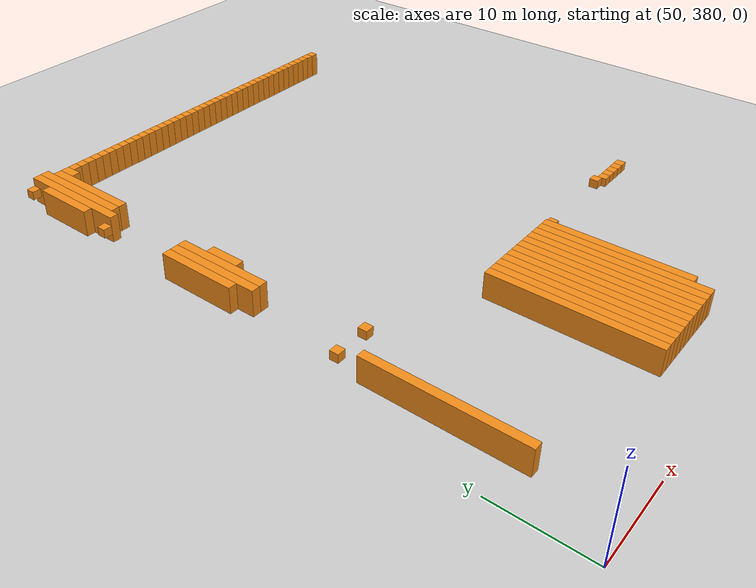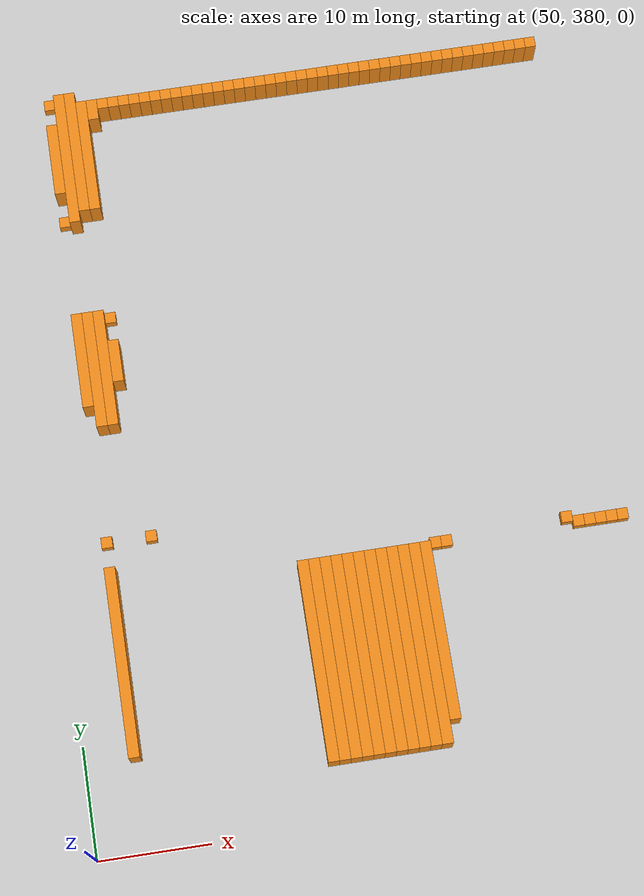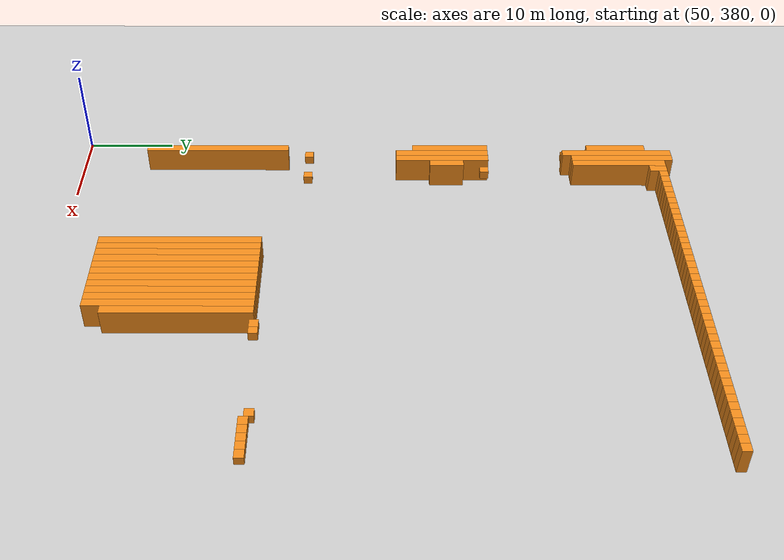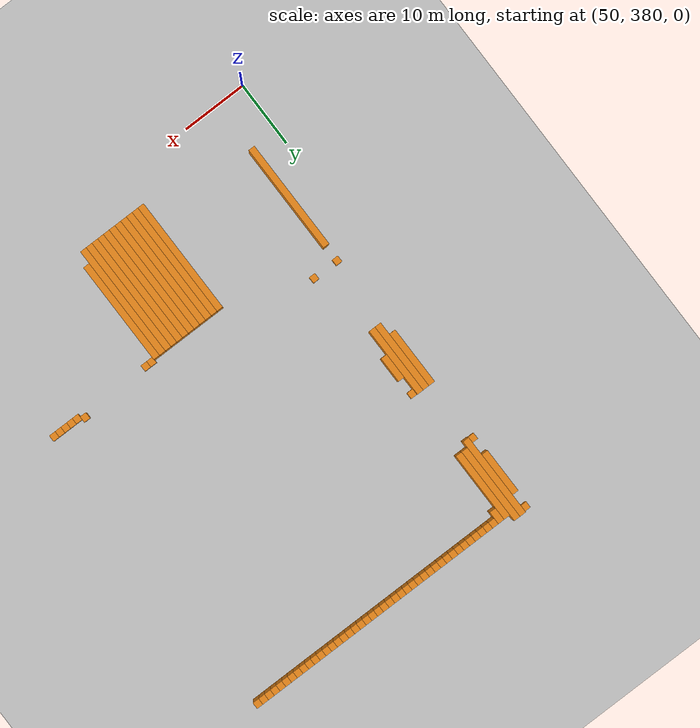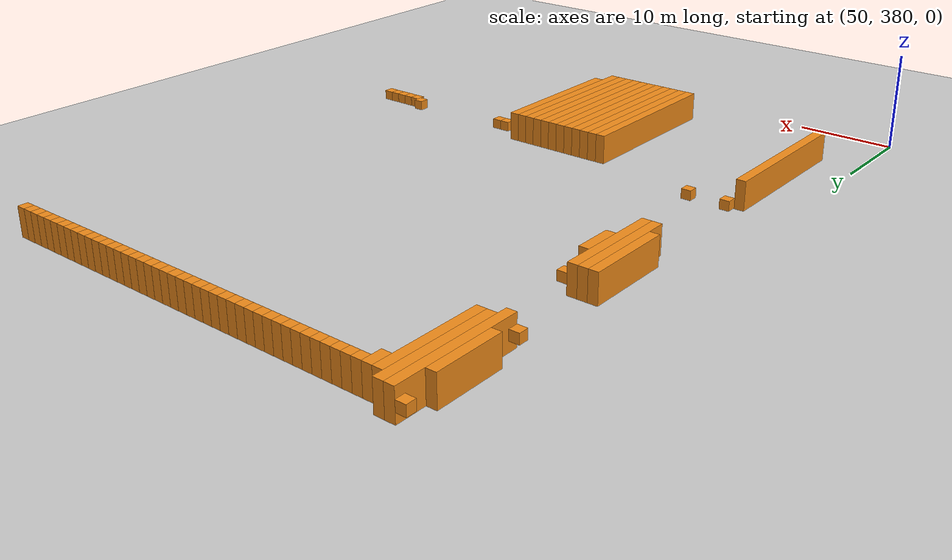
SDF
<sdf version="1.6">
 <world name="default">
  <include><uri>model://ground_plane</uri></include>
  <model name="unit_box_649">
   <pose>54.50   396.50     1.50 0 0 0</pose>
   <static>1</static>
   <link name="link">
    <inertial>
     <mass>5000</mass>
     <inertia><ixx>200</ixx><ixy>0</ixy><ixz>0</ixz><iyy>200</iyy><iyz>0</iyz><izz>200</izz></inertia>
    </inertial>
    <collision name="collision"><geometry><box><size>1 17 3</size></box></geometry></collision>
    <visual name="visual">
     <geometry><box><size>1 17 3</size></box></geometry>
     <material>
      <script><name>Gazebo/Orange</name><uri>file://media/materials/scripts/gazebo.material</uri></script>
     </material>
    </visual>
   </link>
  </model>
  <model name="unit_box_650">
   <pose>54.50   407.50     1.50 0 0 0</pose>
   <static>1</static>
   <link name="link">
    <inertial>
     <mass>5000</mass>
     <inertia><ixx>200</ixx><ixy>0</ixy><ixz>0</ixz><iyy>200</iyy><iyz>0</iyz><izz>200</izz></inertia>
    </inertial>
    <collision name="collision"><geometry><box><size>1 1 1</size></box></geometry></collision>
    <visual name="visual">
     <geometry><box><size>1 1 1</size></box></geometry>
     <material>
      <script><name>Gazebo/Orange</name><uri>file://media/materials/scripts/gazebo.material</uri></script>
     </material>
    </visual>
   </link>
  </model>
  <model name="unit_box_651">
   <pose>54.50   424.50     1.50 0 0 0</pose>
   <static>1</static>
   <link name="link">
    <inertial>
     <mass>5000</mass>
     <inertia><ixx>200</ixx><ixy>0</ixy><ixz>0</ixz><iyy>200</iyy><iyz>0</iyz><izz>200</izz></inertia>
    </inertial>
    <collision name="collision"><geometry><box><size>1 9 3</size></box></geometry></collision>
    <visual name="visual">
     <geometry><box><size>1 9 3</size></box></geometry>
     <material>
      <script><name>Gazebo/Orange</name><uri>file://media/materials/scripts/gazebo.material</uri></script>
     </material>
    </visual>
   </link>
  </model>
  <model name="unit_box_652">
   <pose>54.50   438.50     1.50 0 0 0</pose>
   <static>1</static>
   <link name="link">
    <inertial>
     <mass>5000</mass>
     <inertia><ixx>200</ixx><ixy>0</ixy><ixz>0</ixz><iyy>200</iyy><iyz>0</iyz><izz>200</izz></inertia>
    </inertial>
    <collision name="collision"><geometry><box><size>1 1 1</size></box></geometry></collision>
    <visual name="visual">
     <geometry><box><size>1 1 1</size></box></geometry>
     <material>
      <script><name>Gazebo/Orange</name><uri>file://media/materials/scripts/gazebo.material</uri></script>
     </material>
    </visual>
   </link>
  </model>
  <model name="unit_box_653">
   <pose>54.50   444.50     1.50 0 0 0</pose>
   <static>1</static>
   <link name="link">
    <inertial>
     <mass>5000</mass>
     <inertia><ixx>200</ixx><ixy>0</ixy><ixz>0</ixz><iyy>200</iyy><iyz>0</iyz><izz>200</izz></inertia>
    </inertial>
    <collision name="collision"><geometry><box><size>1 7 3</size></box></geometry></collision>
    <visual name="visual">
     <geometry><box><size>1 7 3</size></box></geometry>
     <material>
      <script><name>Gazebo/Orange</name><uri>file://media/materials/scripts/gazebo.material</uri></script>
     </material>
    </visual>
   </link>
  </model>
  <model name="unit_box_654">
   <pose>54.50   450.50     1.50 0 0 0</pose>
   <static>1</static>
   <link name="link">
    <inertial>
     <mass>5000</mass>
     <inertia><ixx>200</ixx><ixy>0</ixy><ixz>0</ixz><iyy>200</iyy><iyz>0</iyz><izz>200</izz></inertia>
    </inertial>
    <collision name="collision"><geometry><box><size>1 1 1</size></box></geometry></collision>
    <visual name="visual">
     <geometry><box><size>1 1 1</size></box></geometry>
     <material>
      <script><name>Gazebo/Orange</name><uri>file://media/materials/scripts/gazebo.material</uri></script>
     </material>
    </visual>
   </link>
  </model>
  <model name="unit_box_661">
   <pose>55.50   423.50     1.50 0 0 0</pose>
   <static>1</static>
   <link name="link">
    <inertial>
     <mass>5000</mass>
     <inertia><ixx>200</ixx><ixy>0</ixy><ixz>0</ixz><iyy>200</iyy><iyz>0</iyz><izz>200</izz></inertia>
    </inertial>
    <collision name="collision"><geometry><box><size>1 11 3</size></box></geometry></collision>
    <visual name="visual">
     <geometry><box><size>1 11 3</size></box></geometry>
     <material>
      <script><name>Gazebo/Orange</name><uri>file://media/materials/scripts/gazebo.material</uri></script>
     </material>
    </visual>
   </link>
  </model>
  <model name="unit_box_662">
   <pose>55.50   444.50     1.50 0 0 0</pose>
   <static>1</static>
   <link name="link">
    <inertial>
     <mass>5000</mass>
     <inertia><ixx>200</ixx><ixy>0</ixy><ixz>0</ixz><iyy>200</iyy><iyz>0</iyz><izz>200</izz></inertia>
    </inertial>
    <collision name="collision"><geometry><box><size>1 13 3</size></box></geometry></collision>
    <visual name="visual">
     <geometry><box><size>1 13 3</size></box></geometry>
     <material>
      <script><name>Gazebo/Orange</name><uri>file://media/materials/scripts/gazebo.material</uri></script>
     </material>
    </visual>
   </link>
  </model>
  <model name="unit_box_668">
   <pose>56.50   423.50     1.50 0 0 0</pose>
   <static>1</static>
   <link name="link">
    <inertial>
     <mass>5000</mass>
     <inertia><ixx>200</ixx><ixy>0</ixy><ixz>0</ixz><iyy>200</iyy><iyz>0</iyz><izz>200</izz></inertia>
    </inertial>
    <collision name="collision"><geometry><box><size>1 11 3</size></box></geometry></collision>
    <visual name="visual">
     <geometry><box><size>1 11 3</size></box></geometry>
     <material>
      <script><name>Gazebo/Orange</name><uri>file://media/materials/scripts/gazebo.material</uri></script>
     </material>
    </visual>
   </link>
  </model>
  <model name="unit_box_669">
   <pose>56.50   445.00     1.50 0 0 0</pose>
   <static>1</static>
   <link name="link">
    <inertial>
     <mass>5000</mass>
     <inertia><ixx>200</ixx><ixy>0</ixy><ixz>0</ixz><iyy>200</iyy><iyz>0</iyz><izz>200</izz></inertia>
    </inertial>
    <collision name="collision"><geometry><box><size>1 12 3</size></box></geometry></collision>
    <visual name="visual">
     <geometry><box><size>1 12 3</size></box></geometry>
     <material>
      <script><name>Gazebo/Orange</name><uri>file://media/materials/scripts/gazebo.material</uri></script>
     </material>
    </visual>
   </link>
  </model>
  <model name="unit_box_675">
   <pose>57.50   424.00     1.50 0 0 0</pose>
   <static>1</static>
   <link name="link">
    <inertial>
     <mass>5000</mass>
     <inertia><ixx>200</ixx><ixy>0</ixy><ixz>0</ixz><iyy>200</iyy><iyz>0</iyz><izz>200</izz></inertia>
    </inertial>
    <collision name="collision"><geometry><box><size>1 4 3</size></box></geometry></collision>
    <visual name="visual">
     <geometry><box><size>1 4 3</size></box></geometry>
     <material>
      <script><name>Gazebo/Orange</name><uri>file://media/materials/scripts/gazebo.material</uri></script>
     </material>
    </visual>
   </link>
  </model>
  <model name="unit_box_676">
   <pose>57.50   428.50     1.50 0 0 0</pose>
   <static>1</static>
   <link name="link">
    <inertial>
     <mass>5000</mass>
     <inertia><ixx>200</ixx><ixy>0</ixy><ixz>0</ixz><iyy>200</iyy><iyz>0</iyz><izz>200</izz></inertia>
    </inertial>
    <collision name="collision"><geometry><box><size>1 1 1</size></box></geometry></collision>
    <visual name="visual">
     <geometry><box><size>1 1 1</size></box></geometry>
     <material>
      <script><name>Gazebo/Orange</name><uri>file://media/materials/scripts/gazebo.material</uri></script>
     </material>
    </visual>
   </link>
  </model>
  <model name="unit_box_677">
   <pose>57.50   444.50     1.50 0 0 0</pose>
   <static>1</static>
   <link name="link">
    <inertial>
     <mass>5000</mass>
     <inertia><ixx>200</ixx><ixy>0</ixy><ixz>0</ixz><iyy>200</iyy><iyz>0</iyz><izz>200</izz></inertia>
    </inertial>
    <collision name="collision"><geometry><box><size>1 11 3</size></box></geometry></collision>
    <visual name="visual">
     <geometry><box><size>1 11 3</size></box></geometry>
     <material>
      <script><name>Gazebo/Orange</name><uri>file://media/materials/scripts/gazebo.material</uri></script>
     </material>
    </visual>
   </link>
  </model>
  <model name="unit_box_684">
   <pose>58.50   407.50     1.50 0 0 0</pose>
   <static>1</static>
   <link name="link">
    <inertial>
     <mass>5000</mass>
     <inertia><ixx>200</ixx><ixy>0</ixy><ixz>0</ixz><iyy>200</iyy><iyz>0</iyz><izz>200</izz></inertia>
    </inertial>
    <collision name="collision"><geometry><box><size>1 1 1</size></box></geometry></collision>
    <visual name="visual">
     <geometry><box><size>1 1 1</size></box></geometry>
     <material>
      <script><name>Gazebo/Orange</name><uri>file://media/materials/scripts/gazebo.material</uri></script>
     </material>
    </visual>
   </link>
  </model>
  <model name="unit_box_685">
   <pose>58.50   449.00     1.50 0 0 0</pose>
   <static>1</static>
   <link name="link">
    <inertial>
     <mass>5000</mass>
     <inertia><ixx>200</ixx><ixy>0</ixy><ixz>0</ixz><iyy>200</iyy><iyz>0</iyz><izz>200</izz></inertia>
    </inertial>
    <collision name="collision"><geometry><box><size>1 2 3</size></box></geometry></collision>
    <visual name="visual">
     <geometry><box><size>1 2 3</size></box></geometry>
     <material>
      <script><name>Gazebo/Orange</name><uri>file://media/materials/scripts/gazebo.material</uri></script>
     </material>
    </visual>
   </link>
  </model>
  <model name="unit_box_690">
   <pose>59.50   449.50     1.50 0 0 0</pose>
   <static>1</static>
   <link name="link">
    <inertial>
     <mass>5000</mass>
     <inertia><ixx>200</ixx><ixy>0</ixy><ixz>0</ixz><iyy>200</iyy><iyz>0</iyz><izz>200</izz></inertia>
    </inertial>
    <collision name="collision"><geometry><box><size>1 1 3</size></box></geometry></collision>
    <visual name="visual">
     <geometry><box><size>1 1 3</size></box></geometry>
     <material>
      <script><name>Gazebo/Orange</name><uri>file://media/materials/scripts/gazebo.material</uri></script>
     </material>
    </visual>
   </link>
  </model>
  <model name="unit_box_695">
   <pose>60.50   449.50     1.50 0 0 0</pose>
   <static>1</static>
   <link name="link">
    <inertial>
     <mass>5000</mass>
     <inertia><ixx>200</ixx><ixy>0</ixy><ixz>0</ixz><iyy>200</iyy><iyz>0</iyz><izz>200</izz></inertia>
    </inertial>
    <collision name="collision"><geometry><box><size>1 1 3</size></box></geometry></collision>
    <visual name="visual">
     <geometry><box><size>1 1 3</size></box></geometry>
     <material>
      <script><name>Gazebo/Orange</name><uri>file://media/materials/scripts/gazebo.material</uri></script>
     </material>
    </visual>
   </link>
  </model>
  <model name="unit_box_700">
   <pose>61.50   449.50     1.50 0 0 0</pose>
   <static>1</static>
   <link name="link">
    <inertial>
     <mass>5000</mass>
     <inertia><ixx>200</ixx><ixy>0</ixy><ixz>0</ixz><iyy>200</iyy><iyz>0</iyz><izz>200</izz></inertia>
    </inertial>
    <collision name="collision"><geometry><box><size>1 1 3</size></box></geometry></collision>
    <visual name="visual">
     <geometry><box><size>1 1 3</size></box></geometry>
     <material>
      <script><name>Gazebo/Orange</name><uri>file://media/materials/scripts/gazebo.material</uri></script>
     </material>
    </visual>
   </link>
  </model>
  <model name="unit_box_705">
   <pose>62.50   449.50     1.50 0 0 0</pose>
   <static>1</static>
   <link name="link">
    <inertial>
     <mass>5000</mass>
     <inertia><ixx>200</ixx><ixy>0</ixy><ixz>0</ixz><iyy>200</iyy><iyz>0</iyz><izz>200</izz></inertia>
    </inertial>
    <collision name="collision"><geometry><box><size>1 1 3</size></box></geometry></collision>
    <visual name="visual">
     <geometry><box><size>1 1 3</size></box></geometry>
     <material>
      <script><name>Gazebo/Orange</name><uri>file://media/materials/scripts/gazebo.material</uri></script>
     </material>
    </visual>
   </link>
  </model>
  <model name="unit_box_710">
   <pose>63.50   449.50     1.50 0 0 0</pose>
   <static>1</static>
   <link name="link">
    <inertial>
     <mass>5000</mass>
     <inertia><ixx>200</ixx><ixy>0</ixy><ixz>0</ixz><iyy>200</iyy><iyz>0</iyz><izz>200</izz></inertia>
    </inertial>
    <collision name="collision"><geometry><box><size>1 1 3</size></box></geometry></collision>
    <visual name="visual">
     <geometry><box><size>1 1 3</size></box></geometry>
     <material>
      <script><name>Gazebo/Orange</name><uri>file://media/materials/scripts/gazebo.material</uri></script>
     </material>
    </visual>
   </link>
  </model>
  <model name="unit_box_715">
   <pose>64.50   449.50     1.50 0 0 0</pose>
   <static>1</static>
   <link name="link">
    <inertial>
     <mass>5000</mass>
     <inertia><ixx>200</ixx><ixy>0</ixy><ixz>0</ixz><iyy>200</iyy><iyz>0</iyz><izz>200</izz></inertia>
    </inertial>
    <collision name="collision"><geometry><box><size>1 1 3</size></box></geometry></collision>
    <visual name="visual">
     <geometry><box><size>1 1 3</size></box></geometry>
     <material>
      <script><name>Gazebo/Orange</name><uri>file://media/materials/scripts/gazebo.material</uri></script>
     </material>
    </visual>
   </link>
  </model>
  <model name="unit_box_721">
   <pose>65.50   449.50     1.50 0 0 0</pose>
   <static>1</static>
   <link name="link">
    <inertial>
     <mass>5000</mass>
     <inertia><ixx>200</ixx><ixy>0</ixy><ixz>0</ixz><iyy>200</iyy><iyz>0</iyz><izz>200</izz></inertia>
    </inertial>
    <collision name="collision"><geometry><box><size>1 1 3</size></box></geometry></collision>
    <visual name="visual">
     <geometry><box><size>1 1 3</size></box></geometry>
     <material>
      <script><name>Gazebo/Orange</name><uri>file://media/materials/scripts/gazebo.material</uri></script>
     </material>
    </visual>
   </link>
  </model>
  <model name="unit_box_727">
   <pose>66.50   449.50     1.50 0 0 0</pose>
   <static>1</static>
   <link name="link">
    <inertial>
     <mass>5000</mass>
     <inertia><ixx>200</ixx><ixy>0</ixy><ixz>0</ixz><iyy>200</iyy><iyz>0</iyz><izz>200</izz></inertia>
    </inertial>
    <collision name="collision"><geometry><box><size>1 1 3</size></box></geometry></collision>
    <visual name="visual">
     <geometry><box><size>1 1 3</size></box></geometry>
     <material>
      <script><name>Gazebo/Orange</name><uri>file://media/materials/scripts/gazebo.material</uri></script>
     </material>
    </visual>
   </link>
  </model>
  <model name="unit_box_733">
   <pose>67.50   449.50     1.50 0 0 0</pose>
   <static>1</static>
   <link name="link">
    <inertial>
     <mass>5000</mass>
     <inertia><ixx>200</ixx><ixy>0</ixy><ixz>0</ixz><iyy>200</iyy><iyz>0</iyz><izz>200</izz></inertia>
    </inertial>
    <collision name="collision"><geometry><box><size>1 1 3</size></box></geometry></collision>
    <visual name="visual">
     <geometry><box><size>1 1 3</size></box></geometry>
     <material>
      <script><name>Gazebo/Orange</name><uri>file://media/materials/scripts/gazebo.material</uri></script>
     </material>
    </visual>
   </link>
  </model>
  <model name="unit_box_739">
   <pose>68.50   449.50     1.50 0 0 0</pose>
   <static>1</static>
   <link name="link">
    <inertial>
     <mass>5000</mass>
     <inertia><ixx>200</ixx><ixy>0</ixy><ixz>0</ixz><iyy>200</iyy><iyz>0</iyz><izz>200</izz></inertia>
    </inertial>
    <collision name="collision"><geometry><box><size>1 1 3</size></box></geometry></collision>
    <visual name="visual">
     <geometry><box><size>1 1 3</size></box></geometry>
     <material>
      <script><name>Gazebo/Orange</name><uri>file://media/materials/scripts/gazebo.material</uri></script>
     </material>
    </visual>
   </link>
  </model>
  <model name="unit_box_754">
   <pose>69.50   449.50     1.50 0 0 0</pose>
   <static>1</static>
   <link name="link">
    <inertial>
     <mass>5000</mass>
     <inertia><ixx>200</ixx><ixy>0</ixy><ixz>0</ixz><iyy>200</iyy><iyz>0</iyz><izz>200</izz></inertia>
    </inertial>
    <collision name="collision"><geometry><box><size>1 1 3</size></box></geometry></collision>
    <visual name="visual">
     <geometry><box><size>1 1 3</size></box></geometry>
     <material>
      <script><name>Gazebo/Orange</name><uri>file://media/materials/scripts/gazebo.material</uri></script>
     </material>
    </visual>
   </link>
  </model>
  <model name="unit_box_767">
   <pose>70.50   449.50     1.50 0 0 0</pose>
   <static>1</static>
   <link name="link">
    <inertial>
     <mass>5000</mass>
     <inertia><ixx>200</ixx><ixy>0</ixy><ixz>0</ixz><iyy>200</iyy><iyz>0</iyz><izz>200</izz></inertia>
    </inertial>
    <collision name="collision"><geometry><box><size>1 1 3</size></box></geometry></collision>
    <visual name="visual">
     <geometry><box><size>1 1 3</size></box></geometry>
     <material>
      <script><name>Gazebo/Orange</name><uri>file://media/materials/scripts/gazebo.material</uri></script>
     </material>
    </visual>
   </link>
  </model>
  <model name="unit_box_779">
   <pose>71.50   394.00     1.50 0 0 0</pose>
   <static>1</static>
   <link name="link">
    <inertial>
     <mass>5000</mass>
     <inertia><ixx>200</ixx><ixy>0</ixy><ixz>0</ixz><iyy>200</iyy><iyz>0</iyz><izz>200</izz></inertia>
    </inertial>
    <collision name="collision"><geometry><box><size>1 18 3</size></box></geometry></collision>
    <visual name="visual">
     <geometry><box><size>1 18 3</size></box></geometry>
     <material>
      <script><name>Gazebo/Orange</name><uri>file://media/materials/scripts/gazebo.material</uri></script>
     </material>
    </visual>
   </link>
  </model>
  <model name="unit_box_780">
   <pose>71.50   449.50     1.50 0 0 0</pose>
   <static>1</static>
   <link name="link">
    <inertial>
     <mass>5000</mass>
     <inertia><ixx>200</ixx><ixy>0</ixy><ixz>0</ixz><iyy>200</iyy><iyz>0</iyz><izz>200</izz></inertia>
    </inertial>
    <collision name="collision"><geometry><box><size>1 1 3</size></box></geometry></collision>
    <visual name="visual">
     <geometry><box><size>1 1 3</size></box></geometry>
     <material>
      <script><name>Gazebo/Orange</name><uri>file://media/materials/scripts/gazebo.material</uri></script>
     </material>
    </visual>
   </link>
  </model>
  <model name="unit_box_794">
   <pose>72.50   394.00     1.50 0 0 0</pose>
   <static>1</static>
   <link name="link">
    <inertial>
     <mass>5000</mass>
     <inertia><ixx>200</ixx><ixy>0</ixy><ixz>0</ixz><iyy>200</iyy><iyz>0</iyz><izz>200</izz></inertia>
    </inertial>
    <collision name="collision"><geometry><box><size>1 18 3</size></box></geometry></collision>
    <visual name="visual">
     <geometry><box><size>1 18 3</size></box></geometry>
     <material>
      <script><name>Gazebo/Orange</name><uri>file://media/materials/scripts/gazebo.material</uri></script>
     </material>
    </visual>
   </link>
  </model>
  <model name="unit_box_795">
   <pose>72.50   449.50     1.50 0 0 0</pose>
   <static>1</static>
   <link name="link">
    <inertial>
     <mass>5000</mass>
     <inertia><ixx>200</ixx><ixy>0</ixy><ixz>0</ixz><iyy>200</iyy><iyz>0</iyz><izz>200</izz></inertia>
    </inertial>
    <collision name="collision"><geometry><box><size>1 1 3</size></box></geometry></collision>
    <visual name="visual">
     <geometry><box><size>1 1 3</size></box></geometry>
     <material>
      <script><name>Gazebo/Orange</name><uri>file://media/materials/scripts/gazebo.material</uri></script>
     </material>
    </visual>
   </link>
  </model>
  <model name="unit_box_810">
   <pose>73.50   394.00     1.50 0 0 0</pose>
   <static>1</static>
   <link name="link">
    <inertial>
     <mass>5000</mass>
     <inertia><ixx>200</ixx><ixy>0</ixy><ixz>0</ixz><iyy>200</iyy><iyz>0</iyz><izz>200</izz></inertia>
    </inertial>
    <collision name="collision"><geometry><box><size>1 18 3</size></box></geometry></collision>
    <visual name="visual">
     <geometry><box><size>1 18 3</size></box></geometry>
     <material>
      <script><name>Gazebo/Orange</name><uri>file://media/materials/scripts/gazebo.material</uri></script>
     </material>
    </visual>
   </link>
  </model>
  <model name="unit_box_811">
   <pose>73.50   449.50     1.50 0 0 0</pose>
   <static>1</static>
   <link name="link">
    <inertial>
     <mass>5000</mass>
     <inertia><ixx>200</ixx><ixy>0</ixy><ixz>0</ixz><iyy>200</iyy><iyz>0</iyz><izz>200</izz></inertia>
    </inertial>
    <collision name="collision"><geometry><box><size>1 1 3</size></box></geometry></collision>
    <visual name="visual">
     <geometry><box><size>1 1 3</size></box></geometry>
     <material>
      <script><name>Gazebo/Orange</name><uri>file://media/materials/scripts/gazebo.material</uri></script>
     </material>
    </visual>
   </link>
  </model>
  <model name="unit_box_825">
   <pose>74.50   394.00     1.50 0 0 0</pose>
   <static>1</static>
   <link name="link">
    <inertial>
     <mass>5000</mass>
     <inertia><ixx>200</ixx><ixy>0</ixy><ixz>0</ixz><iyy>200</iyy><iyz>0</iyz><izz>200</izz></inertia>
    </inertial>
    <collision name="collision"><geometry><box><size>1 18 3</size></box></geometry></collision>
    <visual name="visual">
     <geometry><box><size>1 18 3</size></box></geometry>
     <material>
      <script><name>Gazebo/Orange</name><uri>file://media/materials/scripts/gazebo.material</uri></script>
     </material>
    </visual>
   </link>
  </model>
  <model name="unit_box_826">
   <pose>74.50   449.50     1.50 0 0 0</pose>
   <static>1</static>
   <link name="link">
    <inertial>
     <mass>5000</mass>
     <inertia><ixx>200</ixx><ixy>0</ixy><ixz>0</ixz><iyy>200</iyy><iyz>0</iyz><izz>200</izz></inertia>
    </inertial>
    <collision name="collision"><geometry><box><size>1 1 3</size></box></geometry></collision>
    <visual name="visual">
     <geometry><box><size>1 1 3</size></box></geometry>
     <material>
      <script><name>Gazebo/Orange</name><uri>file://media/materials/scripts/gazebo.material</uri></script>
     </material>
    </visual>
   </link>
  </model>
  <model name="unit_box_840">
   <pose>75.50   394.00     1.50 0 0 0</pose>
   <static>1</static>
   <link name="link">
    <inertial>
     <mass>5000</mass>
     <inertia><ixx>200</ixx><ixy>0</ixy><ixz>0</ixz><iyy>200</iyy><iyz>0</iyz><izz>200</izz></inertia>
    </inertial>
    <collision name="collision"><geometry><box><size>1 18 3</size></box></geometry></collision>
    <visual name="visual">
     <geometry><box><size>1 18 3</size></box></geometry>
     <material>
      <script><name>Gazebo/Orange</name><uri>file://media/materials/scripts/gazebo.material</uri></script>
     </material>
    </visual>
   </link>
  </model>
  <model name="unit_box_841">
   <pose>75.50   449.50     1.50 0 0 0</pose>
   <static>1</static>
   <link name="link">
    <inertial>
     <mass>5000</mass>
     <inertia><ixx>200</ixx><ixy>0</ixy><ixz>0</ixz><iyy>200</iyy><iyz>0</iyz><izz>200</izz></inertia>
    </inertial>
    <collision name="collision"><geometry><box><size>1 1 3</size></box></geometry></collision>
    <visual name="visual">
     <geometry><box><size>1 1 3</size></box></geometry>
     <material>
      <script><name>Gazebo/Orange</name><uri>file://media/materials/scripts/gazebo.material</uri></script>
     </material>
    </visual>
   </link>
  </model>
  <model name="unit_box_855">
   <pose>76.50   394.00     1.50 0 0 0</pose>
   <static>1</static>
   <link name="link">
    <inertial>
     <mass>5000</mass>
     <inertia><ixx>200</ixx><ixy>0</ixy><ixz>0</ixz><iyy>200</iyy><iyz>0</iyz><izz>200</izz></inertia>
    </inertial>
    <collision name="collision"><geometry><box><size>1 18 3</size></box></geometry></collision>
    <visual name="visual">
     <geometry><box><size>1 18 3</size></box></geometry>
     <material>
      <script><name>Gazebo/Orange</name><uri>file://media/materials/scripts/gazebo.material</uri></script>
     </material>
    </visual>
   </link>
  </model>
  <model name="unit_box_856">
   <pose>76.50   449.50     1.50 0 0 0</pose>
   <static>1</static>
   <link name="link">
    <inertial>
     <mass>5000</mass>
     <inertia><ixx>200</ixx><ixy>0</ixy><ixz>0</ixz><iyy>200</iyy><iyz>0</iyz><izz>200</izz></inertia>
    </inertial>
    <collision name="collision"><geometry><box><size>1 1 3</size></box></geometry></collision>
    <visual name="visual">
     <geometry><box><size>1 1 3</size></box></geometry>
     <material>
      <script><name>Gazebo/Orange</name><uri>file://media/materials/scripts/gazebo.material</uri></script>
     </material>
    </visual>
   </link>
  </model>
  <model name="unit_box_869">
   <pose>77.50   394.00     1.50 0 0 0</pose>
   <static>1</static>
   <link name="link">
    <inertial>
     <mass>5000</mass>
     <inertia><ixx>200</ixx><ixy>0</ixy><ixz>0</ixz><iyy>200</iyy><iyz>0</iyz><izz>200</izz></inertia>
    </inertial>
    <collision name="collision"><geometry><box><size>1 18 3</size></box></geometry></collision>
    <visual name="visual">
     <geometry><box><size>1 18 3</size></box></geometry>
     <material>
      <script><name>Gazebo/Orange</name><uri>file://media/materials/scripts/gazebo.material</uri></script>
     </material>
    </visual>
   </link>
  </model>
  <model name="unit_box_870">
   <pose>77.50   449.50     1.50 0 0 0</pose>
   <static>1</static>
   <link name="link">
    <inertial>
     <mass>5000</mass>
     <inertia><ixx>200</ixx><ixy>0</ixy><ixz>0</ixz><iyy>200</iyy><iyz>0</iyz><izz>200</izz></inertia>
    </inertial>
    <collision name="collision"><geometry><box><size>1 1 3</size></box></geometry></collision>
    <visual name="visual">
     <geometry><box><size>1 1 3</size></box></geometry>
     <material>
      <script><name>Gazebo/Orange</name><uri>file://media/materials/scripts/gazebo.material</uri></script>
     </material>
    </visual>
   </link>
  </model>
  <model name="unit_box_882">
   <pose>78.50   394.00     1.50 0 0 0</pose>
   <static>1</static>
   <link name="link">
    <inertial>
     <mass>5000</mass>
     <inertia><ixx>200</ixx><ixy>0</ixy><ixz>0</ixz><iyy>200</iyy><iyz>0</iyz><izz>200</izz></inertia>
    </inertial>
    <collision name="collision"><geometry><box><size>1 18 3</size></box></geometry></collision>
    <visual name="visual">
     <geometry><box><size>1 18 3</size></box></geometry>
     <material>
      <script><name>Gazebo/Orange</name><uri>file://media/materials/scripts/gazebo.material</uri></script>
     </material>
    </visual>
   </link>
  </model>
  <model name="unit_box_883">
   <pose>78.50   449.50     1.50 0 0 0</pose>
   <static>1</static>
   <link name="link">
    <inertial>
     <mass>5000</mass>
     <inertia><ixx>200</ixx><ixy>0</ixy><ixz>0</ixz><iyy>200</iyy><iyz>0</iyz><izz>200</izz></inertia>
    </inertial>
    <collision name="collision"><geometry><box><size>1 1 3</size></box></geometry></collision>
    <visual name="visual">
     <geometry><box><size>1 1 3</size></box></geometry>
     <material>
      <script><name>Gazebo/Orange</name><uri>file://media/materials/scripts/gazebo.material</uri></script>
     </material>
    </visual>
   </link>
  </model>
  <model name="unit_box_895">
   <pose>79.50   394.00     1.50 0 0 0</pose>
   <static>1</static>
   <link name="link">
    <inertial>
     <mass>5000</mass>
     <inertia><ixx>200</ixx><ixy>0</ixy><ixz>0</ixz><iyy>200</iyy><iyz>0</iyz><izz>200</izz></inertia>
    </inertial>
    <collision name="collision"><geometry><box><size>1 18 3</size></box></geometry></collision>
    <visual name="visual">
     <geometry><box><size>1 18 3</size></box></geometry>
     <material>
      <script><name>Gazebo/Orange</name><uri>file://media/materials/scripts/gazebo.material</uri></script>
     </material>
    </visual>
   </link>
  </model>
  <model name="unit_box_896">
   <pose>79.50   449.50     1.50 0 0 0</pose>
   <static>1</static>
   <link name="link">
    <inertial>
     <mass>5000</mass>
     <inertia><ixx>200</ixx><ixy>0</ixy><ixz>0</ixz><iyy>200</iyy><iyz>0</iyz><izz>200</izz></inertia>
    </inertial>
    <collision name="collision"><geometry><box><size>1 1 3</size></box></geometry></collision>
    <visual name="visual">
     <geometry><box><size>1 1 3</size></box></geometry>
     <material>
      <script><name>Gazebo/Orange</name><uri>file://media/materials/scripts/gazebo.material</uri></script>
     </material>
    </visual>
   </link>
  </model>
  <model name="unit_box_908">
   <pose>80.50   394.00     1.50 0 0 0</pose>
   <static>1</static>
   <link name="link">
    <inertial>
     <mass>5000</mass>
     <inertia><ixx>200</ixx><ixy>0</ixy><ixz>0</ixz><iyy>200</iyy><iyz>0</iyz><izz>200</izz></inertia>
    </inertial>
    <collision name="collision"><geometry><box><size>1 18 3</size></box></geometry></collision>
    <visual name="visual">
     <geometry><box><size>1 18 3</size></box></geometry>
     <material>
      <script><name>Gazebo/Orange</name><uri>file://media/materials/scripts/gazebo.material</uri></script>
     </material>
    </visual>
   </link>
  </model>
  <model name="unit_box_909">
   <pose>80.50   449.50     1.50 0 0 0</pose>
   <static>1</static>
   <link name="link">
    <inertial>
     <mass>5000</mass>
     <inertia><ixx>200</ixx><ixy>0</ixy><ixz>0</ixz><iyy>200</iyy><iyz>0</iyz><izz>200</izz></inertia>
    </inertial>
    <collision name="collision"><geometry><box><size>1 1 3</size></box></geometry></collision>
    <visual name="visual">
     <geometry><box><size>1 1 3</size></box></geometry>
     <material>
      <script><name>Gazebo/Orange</name><uri>file://media/materials/scripts/gazebo.material</uri></script>
     </material>
    </visual>
   </link>
  </model>
  <model name="unit_box_921">
   <pose>81.50   394.00     1.50 0 0 0</pose>
   <static>1</static>
   <link name="link">
    <inertial>
     <mass>5000</mass>
     <inertia><ixx>200</ixx><ixy>0</ixy><ixz>0</ixz><iyy>200</iyy><iyz>0</iyz><izz>200</izz></inertia>
    </inertial>
    <collision name="collision"><geometry><box><size>1 18 3</size></box></geometry></collision>
    <visual name="visual">
     <geometry><box><size>1 18 3</size></box></geometry>
     <material>
      <script><name>Gazebo/Orange</name><uri>file://media/materials/scripts/gazebo.material</uri></script>
     </material>
    </visual>
   </link>
  </model>
  <model name="unit_box_922">
   <pose>81.50   449.50     1.50 0 0 0</pose>
   <static>1</static>
   <link name="link">
    <inertial>
     <mass>5000</mass>
     <inertia><ixx>200</ixx><ixy>0</ixy><ixz>0</ixz><iyy>200</iyy><iyz>0</iyz><izz>200</izz></inertia>
    </inertial>
    <collision name="collision"><geometry><box><size>1 1 3</size></box></geometry></collision>
    <visual name="visual">
     <geometry><box><size>1 1 3</size></box></geometry>
     <material>
      <script><name>Gazebo/Orange</name><uri>file://media/materials/scripts/gazebo.material</uri></script>
     </material>
    </visual>
   </link>
  </model>
  <model name="unit_box_935">
   <pose>82.50   395.00     1.50 0 0 0</pose>
   <static>1</static>
   <link name="link">
    <inertial>
     <mass>5000</mass>
     <inertia><ixx>200</ixx><ixy>0</ixy><ixz>0</ixz><iyy>200</iyy><iyz>0</iyz><izz>200</izz></inertia>
    </inertial>
    <collision name="collision"><geometry><box><size>1 16 3</size></box></geometry></collision>
    <visual name="visual">
     <geometry><box><size>1 16 3</size></box></geometry>
     <material>
      <script><name>Gazebo/Orange</name><uri>file://media/materials/scripts/gazebo.material</uri></script>
     </material>
    </visual>
   </link>
  </model>
  <model name="unit_box_936">
   <pose>82.50   449.50     1.50 0 0 0</pose>
   <static>1</static>
   <link name="link">
    <inertial>
     <mass>5000</mass>
     <inertia><ixx>200</ixx><ixy>0</ixy><ixz>0</ixz><iyy>200</iyy><iyz>0</iyz><izz>200</izz></inertia>
    </inertial>
    <collision name="collision"><geometry><box><size>1 1 3</size></box></geometry></collision>
    <visual name="visual">
     <geometry><box><size>1 1 3</size></box></geometry>
     <material>
      <script><name>Gazebo/Orange</name><uri>file://media/materials/scripts/gazebo.material</uri></script>
     </material>
    </visual>
   </link>
  </model>
  <model name="unit_box_947">
   <pose>83.50   403.00     1.50 0 0 0</pose>
   <static>1</static>
   <link name="link">
    <inertial>
     <mass>5000</mass>
     <inertia><ixx>200</ixx><ixy>0</ixy><ixz>0</ixz><iyy>200</iyy><iyz>0</iyz><izz>200</izz></inertia>
    </inertial>
    <collision name="collision"><geometry><box><size>1 1 1</size></box></geometry></collision>
    <visual name="visual">
     <geometry><box><size>1 1 1</size></box></geometry>
     <material>
      <script><name>Gazebo/Orange</name><uri>file://media/materials/scripts/gazebo.material</uri></script>
     </material>
    </visual>
   </link>
  </model>
  <model name="unit_box_948">
   <pose>83.50   449.50     1.50 0 0 0</pose>
   <static>1</static>
   <link name="link">
    <inertial>
     <mass>5000</mass>
     <inertia><ixx>200</ixx><ixy>0</ixy><ixz>0</ixz><iyy>200</iyy><iyz>0</iyz><izz>200</izz></inertia>
    </inertial>
    <collision name="collision"><geometry><box><size>1 1 3</size></box></geometry></collision>
    <visual name="visual">
     <geometry><box><size>1 1 3</size></box></geometry>
     <material>
      <script><name>Gazebo/Orange</name><uri>file://media/materials/scripts/gazebo.material</uri></script>
     </material>
    </visual>
   </link>
  </model>
  <model name="unit_box_961">
   <pose>84.50   403.00     1.50 0 0 0</pose>
   <static>1</static>
   <link name="link">
    <inertial>
     <mass>5000</mass>
     <inertia><ixx>200</ixx><ixy>0</ixy><ixz>0</ixz><iyy>200</iyy><iyz>0</iyz><izz>200</izz></inertia>
    </inertial>
    <collision name="collision"><geometry><box><size>1 1 1</size></box></geometry></collision>
    <visual name="visual">
     <geometry><box><size>1 1 1</size></box></geometry>
     <material>
      <script><name>Gazebo/Orange</name><uri>file://media/materials/scripts/gazebo.material</uri></script>
     </material>
    </visual>
   </link>
  </model>
  <model name="unit_box_962">
   <pose>84.50   449.50     1.50 0 0 0</pose>
   <static>1</static>
   <link name="link">
    <inertial>
     <mass>5000</mass>
     <inertia><ixx>200</ixx><ixy>0</ixy><ixz>0</ixz><iyy>200</iyy><iyz>0</iyz><izz>200</izz></inertia>
    </inertial>
    <collision name="collision"><geometry><box><size>1 1 3</size></box></geometry></collision>
    <visual name="visual">
     <geometry><box><size>1 1 3</size></box></geometry>
     <material>
      <script><name>Gazebo/Orange</name><uri>file://media/materials/scripts/gazebo.material</uri></script>
     </material>
    </visual>
   </link>
  </model>
  <model name="unit_box_973">
   <pose>85.50   449.50     1.50 0 0 0</pose>
   <static>1</static>
   <link name="link">
    <inertial>
     <mass>5000</mass>
     <inertia><ixx>200</ixx><ixy>0</ixy><ixz>0</ixz><iyy>200</iyy><iyz>0</iyz><izz>200</izz></inertia>
    </inertial>
    <collision name="collision"><geometry><box><size>1 1 3</size></box></geometry></collision>
    <visual name="visual">
     <geometry><box><size>1 1 3</size></box></geometry>
     <material>
      <script><name>Gazebo/Orange</name><uri>file://media/materials/scripts/gazebo.material</uri></script>
     </material>
    </visual>
   </link>
  </model>
  <model name="unit_box_988">
   <pose>86.50   449.50     1.50 0 0 0</pose>
   <static>1</static>
   <link name="link">
    <inertial>
     <mass>5000</mass>
     <inertia><ixx>200</ixx><ixy>0</ixy><ixz>0</ixz><iyy>200</iyy><iyz>0</iyz><izz>200</izz></inertia>
    </inertial>
    <collision name="collision"><geometry><box><size>1 1 3</size></box></geometry></collision>
    <visual name="visual">
     <geometry><box><size>1 1 3</size></box></geometry>
     <material>
      <script><name>Gazebo/Orange</name><uri>file://media/materials/scripts/gazebo.material</uri></script>
     </material>
    </visual>
   </link>
  </model>
  <model name="unit_box_998">
   <pose>87.50   449.50     1.50 0 0 0</pose>
   <static>1</static>
   <link name="link">
    <inertial>
     <mass>5000</mass>
     <inertia><ixx>200</ixx><ixy>0</ixy><ixz>0</ixz><iyy>200</iyy><iyz>0</iyz><izz>200</izz></inertia>
    </inertial>
    <collision name="collision"><geometry><box><size>1 1 3</size></box></geometry></collision>
    <visual name="visual">
     <geometry><box><size>1 1 3</size></box></geometry>
     <material>
      <script><name>Gazebo/Orange</name><uri>file://media/materials/scripts/gazebo.material</uri></script>
     </material>
    </visual>
   </link>
  </model>
  <model name="unit_box_1009">
   <pose>88.50   449.50     1.50 0 0 0</pose>
   <static>1</static>
   <link name="link">
    <inertial>
     <mass>5000</mass>
     <inertia><ixx>200</ixx><ixy>0</ixy><ixz>0</ixz><iyy>200</iyy><iyz>0</iyz><izz>200</izz></inertia>
    </inertial>
    <collision name="collision"><geometry><box><size>1 1 3</size></box></geometry></collision>
    <visual name="visual">
     <geometry><box><size>1 1 3</size></box></geometry>
     <material>
      <script><name>Gazebo/Orange</name><uri>file://media/materials/scripts/gazebo.material</uri></script>
     </material>
    </visual>
   </link>
  </model>
  <model name="unit_box_1018">
   <pose>89.50   449.50     1.50 0 0 0</pose>
   <static>1</static>
   <link name="link">
    <inertial>
     <mass>5000</mass>
     <inertia><ixx>200</ixx><ixy>0</ixy><ixz>0</ixz><iyy>200</iyy><iyz>0</iyz><izz>200</izz></inertia>
    </inertial>
    <collision name="collision"><geometry><box><size>1 1 3</size></box></geometry></collision>
    <visual name="visual">
     <geometry><box><size>1 1 3</size></box></geometry>
     <material>
      <script><name>Gazebo/Orange</name><uri>file://media/materials/scripts/gazebo.material</uri></script>
     </material>
    </visual>
   </link>
  </model>
  <model name="unit_box_1027">
   <pose>90.50   449.50     1.50 0 0 0</pose>
   <static>1</static>
   <link name="link">
    <inertial>
     <mass>5000</mass>
     <inertia><ixx>200</ixx><ixy>0</ixy><ixz>0</ixz><iyy>200</iyy><iyz>0</iyz><izz>200</izz></inertia>
    </inertial>
    <collision name="collision"><geometry><box><size>1 1 3</size></box></geometry></collision>
    <visual name="visual">
     <geometry><box><size>1 1 3</size></box></geometry>
     <material>
      <script><name>Gazebo/Orange</name><uri>file://media/materials/scripts/gazebo.material</uri></script>
     </material>
    </visual>
   </link>
  </model>
  <model name="unit_box_1036">
   <pose>91.50   449.50     1.50 0 0 0</pose>
   <static>1</static>
   <link name="link">
    <inertial>
     <mass>5000</mass>
     <inertia><ixx>200</ixx><ixy>0</ixy><ixz>0</ixz><iyy>200</iyy><iyz>0</iyz><izz>200</izz></inertia>
    </inertial>
    <collision name="collision"><geometry><box><size>1 1 3</size></box></geometry></collision>
    <visual name="visual">
     <geometry><box><size>1 1 3</size></box></geometry>
     <material>
      <script><name>Gazebo/Orange</name><uri>file://media/materials/scripts/gazebo.material</uri></script>
     </material>
    </visual>
   </link>
  </model>
  <model name="unit_box_1045">
   <pose>92.50   449.50     1.50 0 0 0</pose>
   <static>1</static>
   <link name="link">
    <inertial>
     <mass>5000</mass>
     <inertia><ixx>200</ixx><ixy>0</ixy><ixz>0</ixz><iyy>200</iyy><iyz>0</iyz><izz>200</izz></inertia>
    </inertial>
    <collision name="collision"><geometry><box><size>1 1 3</size></box></geometry></collision>
    <visual name="visual">
     <geometry><box><size>1 1 3</size></box></geometry>
     <material>
      <script><name>Gazebo/Orange</name><uri>file://media/materials/scripts/gazebo.material</uri></script>
     </material>
    </visual>
   </link>
  </model>
  <model name="unit_box_1053">
   <pose>93.50   449.50     1.50 0 0 0</pose>
   <static>1</static>
   <link name="link">
    <inertial>
     <mass>5000</mass>
     <inertia><ixx>200</ixx><ixy>0</ixy><ixz>0</ixz><iyy>200</iyy><iyz>0</iyz><izz>200</izz></inertia>
    </inertial>
    <collision name="collision"><geometry><box><size>1 1 3</size></box></geometry></collision>
    <visual name="visual">
     <geometry><box><size>1 1 3</size></box></geometry>
     <material>
      <script><name>Gazebo/Orange</name><uri>file://media/materials/scripts/gazebo.material</uri></script>
     </material>
    </visual>
   </link>
  </model>
  <model name="unit_box_1063">
   <pose>94.50   449.50     1.50 0 0 0</pose>
   <static>1</static>
   <link name="link">
    <inertial>
     <mass>5000</mass>
     <inertia><ixx>200</ixx><ixy>0</ixy><ixz>0</ixz><iyy>200</iyy><iyz>0</iyz><izz>200</izz></inertia>
    </inertial>
    <collision name="collision"><geometry><box><size>1 1 3</size></box></geometry></collision>
    <visual name="visual">
     <geometry><box><size>1 1 3</size></box></geometry>
     <material>
      <script><name>Gazebo/Orange</name><uri>file://media/materials/scripts/gazebo.material</uri></script>
     </material>
    </visual>
   </link>
  </model>
  <model name="unit_box_1074">
   <pose>95.50   403.50     1.50 0 0 0</pose>
   <static>1</static>
   <link name="link">
    <inertial>
     <mass>5000</mass>
     <inertia><ixx>200</ixx><ixy>0</ixy><ixz>0</ixz><iyy>200</iyy><iyz>0</iyz><izz>200</izz></inertia>
    </inertial>
    <collision name="collision"><geometry><box><size>1 1 1</size></box></geometry></collision>
    <visual name="visual">
     <geometry><box><size>1 1 1</size></box></geometry>
     <material>
      <script><name>Gazebo/Orange</name><uri>file://media/materials/scripts/gazebo.material</uri></script>
     </material>
    </visual>
   </link>
  </model>
  <model name="unit_box_1075">
   <pose>95.50   449.50     1.50 0 0 0</pose>
   <static>1</static>
   <link name="link">
    <inertial>
     <mass>5000</mass>
     <inertia><ixx>200</ixx><ixy>0</ixy><ixz>0</ixz><iyy>200</iyy><iyz>0</iyz><izz>200</izz></inertia>
    </inertial>
    <collision name="collision"><geometry><box><size>1 1 3</size></box></geometry></collision>
    <visual name="visual">
     <geometry><box><size>1 1 3</size></box></geometry>
     <material>
      <script><name>Gazebo/Orange</name><uri>file://media/materials/scripts/gazebo.material</uri></script>
     </material>
    </visual>
   </link>
  </model>
  <model name="unit_box_1086">
   <pose>96.50   403.00     1.50 0 0 0</pose>
   <static>1</static>
   <link name="link">
    <inertial>
     <mass>5000</mass>
     <inertia><ixx>200</ixx><ixy>0</ixy><ixz>0</ixz><iyy>200</iyy><iyz>0</iyz><izz>200</izz></inertia>
    </inertial>
    <collision name="collision"><geometry><box><size>1 1 1</size></box></geometry></collision>
    <visual name="visual">
     <geometry><box><size>1 1 1</size></box></geometry>
     <material>
      <script><name>Gazebo/Orange</name><uri>file://media/materials/scripts/gazebo.material</uri></script>
     </material>
    </visual>
   </link>
  </model>
  <model name="unit_box_1087">
   <pose>96.50   449.50     1.50 0 0 0</pose>
   <static>1</static>
   <link name="link">
    <inertial>
     <mass>5000</mass>
     <inertia><ixx>200</ixx><ixy>0</ixy><ixz>0</ixz><iyy>200</iyy><iyz>0</iyz><izz>200</izz></inertia>
    </inertial>
    <collision name="collision"><geometry><box><size>1 1 3</size></box></geometry></collision>
    <visual name="visual">
     <geometry><box><size>1 1 3</size></box></geometry>
     <material>
      <script><name>Gazebo/Orange</name><uri>file://media/materials/scripts/gazebo.material</uri></script>
     </material>
    </visual>
   </link>
  </model>
  <model name="unit_box_1096">
   <pose>97.50   403.00     1.50 0 0 0</pose>
   <static>1</static>
   <link name="link">
    <inertial>
     <mass>5000</mass>
     <inertia><ixx>200</ixx><ixy>0</ixy><ixz>0</ixz><iyy>200</iyy><iyz>0</iyz><izz>200</izz></inertia>
    </inertial>
    <collision name="collision"><geometry><box><size>1 1 1</size></box></geometry></collision>
    <visual name="visual">
     <geometry><box><size>1 1 1</size></box></geometry>
     <material>
      <script><name>Gazebo/Orange</name><uri>file://media/materials/scripts/gazebo.material</uri></script>
     </material>
    </visual>
   </link>
  </model>
  <model name="unit_box_1097">
   <pose>97.50   449.50     1.50 0 0 0</pose>
   <static>1</static>
   <link name="link">
    <inertial>
     <mass>5000</mass>
     <inertia><ixx>200</ixx><ixy>0</ixy><ixz>0</ixz><iyy>200</iyy><iyz>0</iyz><izz>200</izz></inertia>
    </inertial>
    <collision name="collision"><geometry><box><size>1 1 3</size></box></geometry></collision>
    <visual name="visual">
     <geometry><box><size>1 1 3</size></box></geometry>
     <material>
      <script><name>Gazebo/Orange</name><uri>file://media/materials/scripts/gazebo.material</uri></script>
     </material>
    </visual>
   </link>
  </model>
  <model name="unit_box_1107">
   <pose>98.50   403.00     1.50 0 0 0</pose>
   <static>1</static>
   <link name="link">
    <inertial>
     <mass>5000</mass>
     <inertia><ixx>200</ixx><ixy>0</ixy><ixz>0</ixz><iyy>200</iyy><iyz>0</iyz><izz>200</izz></inertia>
    </inertial>
    <collision name="collision"><geometry><box><size>1 1 1</size></box></geometry></collision>
    <visual name="visual">
     <geometry><box><size>1 1 1</size></box></geometry>
     <material>
      <script><name>Gazebo/Orange</name><uri>file://media/materials/scripts/gazebo.material</uri></script>
     </material>
    </visual>
   </link>
  </model>
  <model name="unit_box_1108">
   <pose>98.50   449.50     1.50 0 0 0</pose>
   <static>1</static>
   <link name="link">
    <inertial>
     <mass>5000</mass>
     <inertia><ixx>200</ixx><ixy>0</ixy><ixz>0</ixz><iyy>200</iyy><iyz>0</iyz><izz>200</izz></inertia>
    </inertial>
    <collision name="collision"><geometry><box><size>1 1 3</size></box></geometry></collision>
    <visual name="visual">
     <geometry><box><size>1 1 3</size></box></geometry>
     <material>
      <script><name>Gazebo/Orange</name><uri>file://media/materials/scripts/gazebo.material</uri></script>
     </material>
    </visual>
   </link>
  </model>
  <model name="unit_box_1119">
   <pose>99.50   403.00     1.50 0 0 0</pose>
   <static>1</static>
   <link name="link">
    <inertial>
     <mass>5000</mass>
     <inertia><ixx>200</ixx><ixy>0</ixy><ixz>0</ixz><iyy>200</iyy><iyz>0</iyz><izz>200</izz></inertia>
    </inertial>
    <collision name="collision"><geometry><box><size>1 1 1</size></box></geometry></collision>
    <visual name="visual">
     <geometry><box><size>1 1 1</size></box></geometry>
     <material>
      <script><name>Gazebo/Orange</name><uri>file://media/materials/scripts/gazebo.material</uri></script>
     </material>
    </visual>
   </link>
  </model>
  <model name="unit_box_1120">
   <pose>99.50   449.50     1.50 0 0 0</pose>
   <static>1</static>
   <link name="link">
    <inertial>
     <mass>5000</mass>
     <inertia><ixx>200</ixx><ixy>0</ixy><ixz>0</ixz><iyy>200</iyy><iyz>0</iyz><izz>200</izz></inertia>
    </inertial>
    <collision name="collision"><geometry><box><size>1 1 3</size></box></geometry></collision>
    <visual name="visual">
     <geometry><box><size>1 1 3</size></box></geometry>
     <material>
      <script><name>Gazebo/Orange</name><uri>file://media/materials/scripts/gazebo.material</uri></script>
     </material>
    </visual>
   </link>
  </model>
  <model name="unit_box_1131">
   <pose>100.50   403.00     1.50 0 0 0</pose>
   <static>1</static>
   <link name="link">
    <inertial>
     <mass>5000</mass>
     <inertia><ixx>200</ixx><ixy>0</ixy><ixz>0</ixz><iyy>200</iyy><iyz>0</iyz><izz>200</izz></inertia>
    </inertial>
    <collision name="collision"><geometry><box><size>1 1 1</size></box></geometry></collision>
    <visual name="visual">
     <geometry><box><size>1 1 1</size></box></geometry>
     <material>
      <script><name>Gazebo/Orange</name><uri>file://media/materials/scripts/gazebo.material</uri></script>
     </material>
    </visual>
   </link>
  </model>
  <model name="unit_box_1132">
   <pose>100.50   449.50     1.50 0 0 0</pose>
   <static>1</static>
   <link name="link">
    <inertial>
     <mass>5000</mass>
     <inertia><ixx>200</ixx><ixy>0</ixy><ixz>0</ixz><iyy>200</iyy><iyz>0</iyz><izz>200</izz></inertia>
    </inertial>
    <collision name="collision"><geometry><box><size>1 1 3</size></box></geometry></collision>
    <visual name="visual">
     <geometry><box><size>1 1 3</size></box></geometry>
     <material>
      <script><name>Gazebo/Orange</name><uri>file://media/materials/scripts/gazebo.material</uri></script>
     </material>
    </visual>
   </link>
  </model>
 </world>
</sdf>
